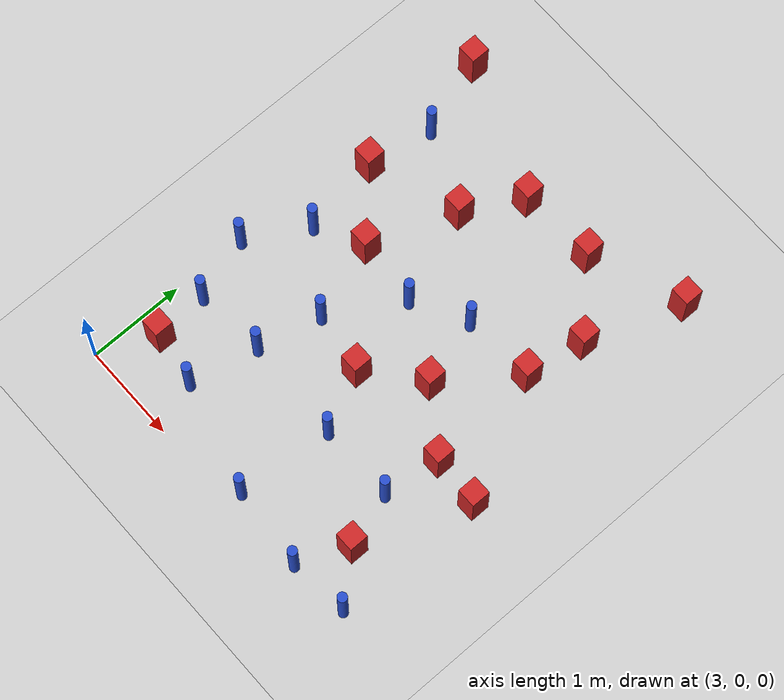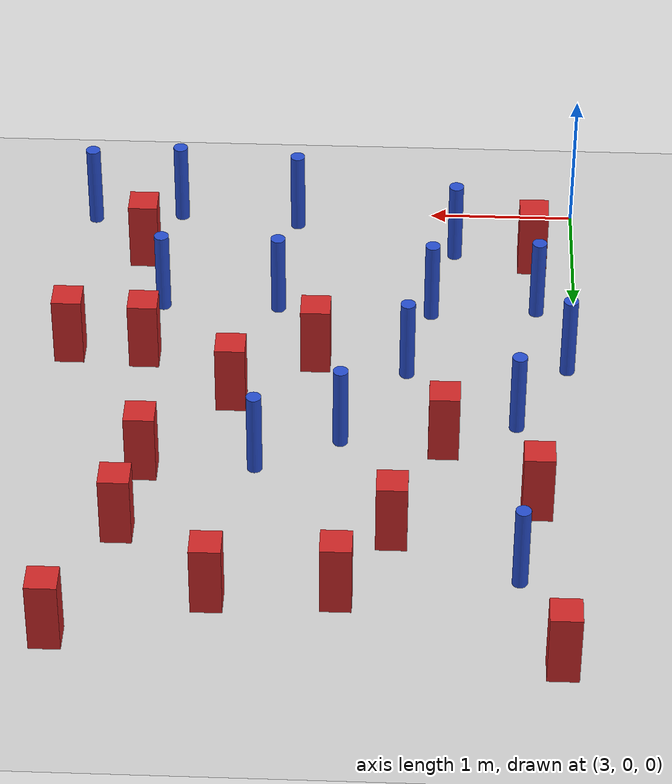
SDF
<sdf version="1.6">
 <world name="default">
  <model name="ground_plane">
   <static>1</static>
   <link name="link">
    <collision name="collision">
     <geometry><plane><normal>0 0 1</normal><size>100 100</size></plane></geometry>
     <surface><friction><ode><mu>100</mu><mu2>50</mu2></ode></friction></surface>
    </collision>
    <visual name="visual">
     <cast_shadows>0</cast_shadows>
     <geometry><plane><normal>0 0 1</normal><size>100 100</size></plane></geometry>
     <material>
      <ambient>1.0 1.0 1.0 1.0</ambient>
      <diffuse>0.8 0.8 0.8 1.0</diffuse>
      <specular>0.01 0.01 0.01 1.000000</specular>
     </material>
    </visual>
   </link>
  </model>
  <model name="square_post_obstacle15">
   <static>true</static>
   <pose>5.91913533131 1.71610015899 8.22691968438e-08 7.2212513382e-06 -7.54495500217e-07 2.29674213826e-05</pose>
   <link name="link">
    <pose>0 0 0.25 0 -0 0</pose>
    <inertial>
     <mass>100</mass>
     <inertia>
      <ixx>0.166667</ixx>
      <ixy>0</ixy>
      <ixz>0</ixz>
      <iyy>0.166667</iyy>
      <iyz>0</iyz>
      <izz>0.166667</izz>
     </inertia>
    </inertial>
    <collision name="collision"><geometry><box><size>.2 .2 .5</size></box></geometry></collision>
    <visual name="visual">
     <geometry><box><size>.2 .2 .5</size></box></geometry>
     <material>
      <script><name>Gazebo/Red</name><uri>file://media/materials/scripts/gazebo.material</uri></script>
     </material>
    </visual>
   </link>
  </model>
  <model name="square_post_obstacle16">
   <static>true</static>
   <pose>4.75993970819 1.72401905537 8.22691968438e-08 7.2212513382e-06 -7.54495500217e-07 2.29674213826e-05</pose>
   <link name="link">
    <pose>0 0 0.25 0 -0 0</pose>
    <inertial>
     <mass>100</mass>
     <inertia>
      <ixx>0.166667</ixx>
      <ixy>0</ixy>
      <ixz>0</ixz>
      <iyy>0.166667</iyy>
      <iyz>0</iyz>
      <izz>0.166667</izz>
     </inertia>
    </inertial>
    <collision name="collision"><geometry><box><size>.2 .2 .5</size></box></geometry></collision>
    <visual name="visual">
     <geometry><box><size>.2 .2 .5</size></box></geometry>
     <material>
      <script><name>Gazebo/Red</name><uri>file://media/materials/scripts/gazebo.material</uri></script>
     </material>
    </visual>
   </link>
  </model>
  <model name="pole_obstacle24">
   <static>true</static>
   <pose>5.11037407462 2.83061327207 2.88873142074e-08 -9.90536690245e-09 4.6021994898e-07 -1.20965994966e-07</pose>
   <link name="link">
    <pose>0 0 0.3 0 -0 0</pose>
    <inertial>
     <mass>1</mass>
     <inertia><ixx>0.145833</ixx><ixy>0</ixy><ixz>0</ixz><iyy>0.145833</iyy><iyz>0</iyz><izz>0.125</izz></inertia>
    </inertial>
    <collision name="collision">
     <geometry><cylinder><radius>0.05</radius><length>.6</length></cylinder></geometry>
    </collision>
    <visual name="visual">
     <geometry><cylinder><radius>0.05</radius><length>.6</length></cylinder></geometry>
     <material>
      <script><name>Gazebo/Blue</name><uri>file://media/materials/scripts/gazebo.material</uri></script>
     </material>
    </visual>
   </link>
  </model>
  <model name="square_post_obstacle28">
   <static>true</static>
   <pose>4.20673665937 3.49029811703 8.22691968438e-08 7.2212513382e-06 -7.54495500217e-07 2.29674213826e-05</pose>
   <link name="link">
    <pose>0 0 0.25 0 -0 0</pose>
    <inertial>
     <mass>100</mass>
     <inertia>
      <ixx>0.166667</ixx>
      <ixy>0</ixy>
      <ixz>0</ixz>
      <iyy>0.166667</iyy>
      <iyz>0</iyz>
      <izz>0.166667</izz>
     </inertia>
    </inertial>
    <collision name="collision"><geometry><box><size>.2 .2 .5</size></box></geometry></collision>
    <visual name="visual">
     <geometry><box><size>.2 .2 .5</size></box></geometry>
     <material>
      <script><name>Gazebo/Red</name><uri>file://media/materials/scripts/gazebo.material</uri></script>
     </material>
    </visual>
   </link>
  </model>
  <model name="pole_obstacle33">
   <static>true</static>
   <pose>6.40527286251 0.13451410764 2.88873142074e-08 -9.90536689234e-09 4.60219949004e-07 -1.20965994953e-07</pose>
   <link name="link">
    <pose>0 0 0.3 0 -0 0</pose>
    <inertial>
     <mass>1</mass>
     <inertia><ixx>0.145833</ixx><ixy>0</ixy><ixz>0</ixz><iyy>0.145833</iyy><iyz>0</iyz><izz>0.125</izz></inertia>
    </inertial>
    <collision name="collision">
     <geometry><cylinder><radius>0.05</radius><length>.6</length></cylinder></geometry>
    </collision>
    <visual name="visual">
     <geometry><cylinder><radius>0.05</radius><length>.6</length></cylinder></geometry>
     <material>
      <script><name>Gazebo/Blue</name><uri>file://media/materials/scripts/gazebo.material</uri></script>
     </material>
    </visual>
   </link>
  </model>
  <model name="pole_obstacle35">
   <static>true</static>
   <pose>3.39763952158 3.85298940122 2.88873142074e-08 -9.90536690232e-09 4.6021994898e-07 -1.20965994968e-07</pose>
   <link name="link">
    <pose>0 0 0.3 0 -0 0</pose>
    <inertial>
     <mass>1</mass>
     <inertia><ixx>0.145833</ixx><ixy>0</ixy><ixz>0</ixz><iyy>0.145833</iyy><iyz>0</iyz><izz>0.125</izz></inertia>
    </inertial>
    <collision name="collision">
     <geometry><cylinder><radius>0.05</radius><length>.6</length></cylinder></geometry>
    </collision>
    <visual name="visual">
     <geometry><cylinder><radius>0.05</radius><length>.6</length></cylinder></geometry>
     <material>
      <script><name>Gazebo/Blue</name><uri>file://media/materials/scripts/gazebo.material</uri></script>
     </material>
    </visual>
   </link>
  </model>
  <model name="square_post_obstacle38">
   <static>true</static>
   <pose>5.30407567016 2.15420816764 8.22691968438e-08 7.2212513382e-06 -7.54495500217e-07 2.29674213826e-05</pose>
   <link name="link">
    <pose>0 0 0.25 0 -0 0</pose>
    <inertial>
     <mass>100</mass>
     <inertia>
      <ixx>0.166667</ixx>
      <ixy>0</ixy>
      <ixz>0</ixz>
      <iyy>0.166667</iyy>
      <iyz>0</iyz>
      <izz>0.166667</izz>
     </inertia>
    </inertial>
    <collision name="collision"><geometry><box><size>.2 .2 .5</size></box></geometry></collision>
    <visual name="visual">
     <geometry><box><size>.2 .2 .5</size></box></geometry>
     <material>
      <script><name>Gazebo/Red</name><uri>file://media/materials/scripts/gazebo.material</uri></script>
     </material>
    </visual>
   </link>
  </model>
  <model name="square_post_obstacle41">
   <static>true</static>
   <pose>3.14698294766 4.61446405853 8.22691968438e-08 7.2212513382e-06 -7.54495500217e-07 2.29674213826e-05</pose>
   <link name="link">
    <pose>0 0 0.25 0 -0 0</pose>
    <inertial>
     <mass>100</mass>
     <inertia>
      <ixx>0.166667</ixx>
      <ixy>0</ixy>
      <ixz>0</ixz>
      <iyy>0.166667</iyy>
      <iyz>0</iyz>
      <izz>0.166667</izz>
     </inertia>
    </inertial>
    <collision name="collision"><geometry><box><size>.2 .2 .5</size></box></geometry></collision>
    <visual name="visual">
     <geometry><box><size>.2 .2 .5</size></box></geometry>
     <material>
      <script><name>Gazebo/Red</name><uri>file://media/materials/scripts/gazebo.material</uri></script>
     </material>
    </visual>
   </link>
  </model>
  <model name="square_post_obstacle42">
   <static>true</static>
   <pose>3.88788848472 2.59836692226 8.22691968438e-08 7.2212513382e-06 -7.54495500217e-07 2.29674213826e-05</pose>
   <link name="link">
    <pose>0 0 0.25 0 -0 0</pose>
    <inertial>
     <mass>100</mass>
     <inertia>
      <ixx>0.166667</ixx>
      <ixy>0</ixy>
      <ixz>0</ixz>
      <iyy>0.166667</iyy>
      <iyz>0</iyz>
      <izz>0.166667</izz>
     </inertia>
    </inertial>
    <collision name="collision"><geometry><box><size>.2 .2 .5</size></box></geometry></collision>
    <visual name="visual">
     <geometry><box><size>.2 .2 .5</size></box></geometry>
     <material>
      <script><name>Gazebo/Red</name><uri>file://media/materials/scripts/gazebo.material</uri></script>
     </material>
    </visual>
   </link>
  </model>
  <model name="pole_obstacle56">
   <static>true</static>
   <pose>5.8394028995 1.13227274472 2.88873142074e-08 -9.90536689445e-09 4.60219948999e-07 -1.20965994956e-07</pose>
   <link name="link">
    <pose>0 0 0.3 0 -0 0</pose>
    <inertial>
     <mass>1</mass>
     <inertia><ixx>0.145833</ixx><ixy>0</ixy><ixz>0</ixz><iyy>0.145833</iyy><iyz>0</iyz><izz>0.125</izz></inertia>
    </inertial>
    <collision name="collision">
     <geometry><cylinder><radius>0.05</radius><length>.6</length></cylinder></geometry>
    </collision>
    <visual name="visual">
     <geometry><cylinder><radius>0.05</radius><length>.6</length></cylinder></geometry>
     <material>
      <script><name>Gazebo/Blue</name><uri>file://media/materials/scripts/gazebo.material</uri></script>
     </material>
    </visual>
   </link>
  </model>
  <model name="square_post_obstacle53">
   <static>true</static>
   <pose>6.01194403105 0.586845021487 8.22691968438e-08 7.2212513382e-06 -7.54495500217e-07 2.29674213826e-05</pose>
   <link name="link">
    <pose>0 0 0.25 0 -0 0</pose>
    <inertial>
     <mass>100</mass>
     <inertia>
      <ixx>0.166667</ixx>
      <ixy>0</ixy>
      <ixz>0</ixz>
      <iyy>0.166667</iyy>
      <iyz>0</iyz>
      <izz>0.166667</izz>
     </inertia>
    </inertial>
    <collision name="collision"><geometry><box><size>.2 .2 .5</size></box></geometry></collision>
    <visual name="visual">
     <geometry><box><size>.2 .2 .5</size></box></geometry>
     <material>
      <script><name>Gazebo/Red</name><uri>file://media/materials/scripts/gazebo.material</uri></script>
     </material>
    </visual>
   </link>
  </model>
  <model name="square_post_obstacle58">
   <static>true</static>
   <pose>5.33060784728 4.10329700988 8.22691968438e-08 7.2212513382e-06 -7.54495500217e-07 2.29674213826e-05</pose>
   <link name="link">
    <pose>0 0 0.25 0 -0 0</pose>
    <inertial>
     <mass>100</mass>
     <inertia>
      <ixx>0.166667</ixx>
      <ixy>0</ixy>
      <ixz>0</ixz>
      <iyy>0.166667</iyy>
      <iyz>0</iyz>
      <izz>0.166667</izz>
     </inertia>
    </inertial>
    <collision name="collision"><geometry><box><size>.2 .2 .5</size></box></geometry></collision>
    <visual name="visual">
     <geometry><box><size>.2 .2 .5</size></box></geometry>
     <material>
      <script><name>Gazebo/Red</name><uri>file://media/materials/scripts/gazebo.material</uri></script>
     </material>
    </visual>
   </link>
  </model>
  <model name="square_post_obstacle65">
   <static>true</static>
   <pose>5.94418810732 3.48934024343 8.22691968438e-08 7.2212513382e-06 -7.54495500217e-07 2.29674213826e-05</pose>
   <link name="link">
    <pose>0 0 0.25 0 -0 0</pose>
    <inertial>
     <mass>100</mass>
     <inertia>
      <ixx>0.166667</ixx>
      <ixy>0</ixy>
      <ixz>0</ixz>
      <iyy>0.166667</iyy>
      <iyz>0</iyz>
      <izz>0.166667</izz>
     </inertia>
    </inertial>
    <collision name="collision"><geometry><box><size>.2 .2 .5</size></box></geometry></collision>
    <visual name="visual">
     <geometry><box><size>.2 .2 .5</size></box></geometry>
     <material>
      <script><name>Gazebo/Red</name><uri>file://media/materials/scripts/gazebo.material</uri></script>
     </material>
    </visual>
   </link>
  </model>
  <model name="pole_obstacle101">
   <static>true</static>
   <pose>4.14185569916 1.82189329206 2.88873142074e-08 -9.90536689445e-09 4.60219948999e-07 -1.20965994956e-07</pose>
   <link name="link">
    <pose>0 0 0.3 0 -0 0</pose>
    <inertial>
     <mass>1</mass>
     <inertia><ixx>0.145833</ixx><ixy>0</ixy><ixz>0</ixz><iyy>0.145833</iyy><iyz>0</iyz><izz>0.125</izz></inertia>
    </inertial>
    <collision name="collision">
     <geometry><cylinder><radius>0.05</radius><length>.6</length></cylinder></geometry>
    </collision>
    <visual name="visual">
     <geometry><cylinder><radius>0.05</radius><length>.6</length></cylinder></geometry>
     <material>
      <script><name>Gazebo/Blue</name><uri>file://media/materials/scripts/gazebo.material</uri></script>
     </material>
    </visual>
   </link>
  </model>
  <model name="pole_obstacle113">
   <static>true</static>
   <pose>3.26121144728 1.10969766319 2.88873142074e-08 -9.90536689395e-09 4.60219949e-07 -1.20965994953e-07</pose>
   <link name="link">
    <pose>0 0 0.3 0 -0 0</pose>
    <inertial>
     <mass>1</mass>
     <inertia><ixx>0.145833</ixx><ixy>0</ixy><ixz>0</ixz><iyy>0.145833</iyy><iyz>0</iyz><izz>0.125</izz></inertia>
    </inertial>
    <collision name="collision">
     <geometry><cylinder><radius>0.05</radius><length>.6</length></cylinder></geometry>
    </collision>
    <visual name="visual">
     <geometry><cylinder><radius>0.05</radius><length>.6</length></cylinder></geometry>
     <material>
      <script><name>Gazebo/Blue</name><uri>file://media/materials/scripts/gazebo.material</uri></script>
     </material>
    </visual>
   </link>
  </model>
  <model name="square_post_obstacle114">
   <static>true</static>
   <pose>5.83946786717 2.88007803381 8.22691968438e-08 7.2212513382e-06 -7.54495500217e-07 2.29674213826e-05</pose>
   <link name="link">
    <pose>0 0 0.25 0 -0 0</pose>
    <inertial>
     <mass>100</mass>
     <inertia>
      <ixx>0.166667</ixx>
      <ixy>0</ixy>
      <ixz>0</ixz>
      <iyy>0.166667</iyy>
      <iyz>0</iyz>
      <izz>0.166667</izz>
     </inertia>
    </inertial>
    <collision name="collision"><geometry><box><size>.2 .2 .5</size></box></geometry></collision>
    <visual name="visual">
     <geometry><box><size>.2 .2 .5</size></box></geometry>
     <material>
      <script><name>Gazebo/Red</name><uri>file://media/materials/scripts/gazebo.material</uri></script>
     </material>
    </visual>
   </link>
  </model>
  <model name="pole_obstacle135">
   <static>true</static>
   <pose>4.56372348728 2.54478385876 2.88873142074e-08 -9.90536690245e-09 4.6021994898e-07 -1.20965994966e-07</pose>
   <link name="link">
    <pose>0 0 0.3 0 -0 0</pose>
    <inertial>
     <mass>1</mass>
     <inertia><ixx>0.145833</ixx><ixy>0</ixy><ixz>0</ixz><iyy>0.145833</iyy><iyz>0</iyz><izz>0.125</izz></inertia>
    </inertial>
    <collision name="collision">
     <geometry><cylinder><radius>0.05</radius><length>.6</length></cylinder></geometry>
    </collision>
    <visual name="visual">
     <geometry><cylinder><radius>0.05</radius><length>.6</length></cylinder></geometry>
     <material>
      <script><name>Gazebo/Blue</name><uri>file://media/materials/scripts/gazebo.material</uri></script>
     </material>
    </visual>
   </link>
  </model>
  <model name="pole_obstacle136">
   <static>true</static>
   <pose>5.79006558571 0.0757111506193 2.88873142074e-08 -9.90536689727e-09 4.60219948992e-07 -1.20965994958e-07</pose>
   <link name="link">
    <pose>0 0 0.3 0 -0 0</pose>
    <inertial>
     <mass>1</mass>
     <inertia><ixx>0.145833</ixx><ixy>0</ixy><ixz>0</ixz><iyy>0.145833</iyy><iyz>0</iyz><izz>0.125</izz></inertia>
    </inertial>
    <collision name="collision">
     <geometry><cylinder><radius>0.05</radius><length>.6</length></cylinder></geometry>
    </collision>
    <visual name="visual">
     <geometry><cylinder><radius>0.05</radius><length>.6</length></cylinder></geometry>
     <material>
      <script><name>Gazebo/Blue</name><uri>file://media/materials/scripts/gazebo.material</uri></script>
     </material>
    </visual>
   </link>
  </model>
  <model name="pole_obstacle142">
   <static>true</static>
   <pose>3.40600078391 2.3549040393 2.88873142074e-08 -9.90536690232e-09 4.6021994898e-07 -1.20965994968e-07</pose>
   <link name="link">
    <pose>0 0 0.3 0 -0 0</pose>
    <inertial>
     <mass>1</mass>
     <inertia><ixx>0.145833</ixx><ixy>0</ixy><ixz>0</ixz><iyy>0.145833</iyy><iyz>0</iyz><izz>0.125</izz></inertia>
    </inertial>
    <collision name="collision">
     <geometry><cylinder><radius>0.05</radius><length>.6</length></cylinder></geometry>
    </collision>
    <visual name="visual">
     <geometry><cylinder><radius>0.05</radius><length>.6</length></cylinder></geometry>
     <material>
      <script><name>Gazebo/Blue</name><uri>file://media/materials/scripts/gazebo.material</uri></script>
     </material>
    </visual>
   </link>
  </model>
  <model name="pole_obstacle147">
   <static>true</static>
   <pose>3.06055036785 1.74684611782 2.88873142074e-08 -9.90536689395e-09 4.60219949e-07 -1.20965994953e-07</pose>
   <link name="link">
    <pose>0 0 0.3 0 -0 0</pose>
    <inertial>
     <mass>1</mass>
     <inertia><ixx>0.145833</ixx><ixy>0</ixy><ixz>0</ixz><iyy>0.145833</iyy><iyz>0</iyz><izz>0.125</izz></inertia>
    </inertial>
    <collision name="collision">
     <geometry><cylinder><radius>0.05</radius><length>.6</length></cylinder></geometry>
    </collision>
    <visual name="visual">
     <geometry><cylinder><radius>0.05</radius><length>.6</length></cylinder></geometry>
     <material>
      <script><name>Gazebo/Blue</name><uri>file://media/materials/scripts/gazebo.material</uri></script>
     </material>
    </visual>
   </link>
  </model>
  <model name="pole_obstacle149">
   <static>true</static>
   <pose>5.04340811305 1.13180181886 2.88873142074e-08 -9.90536689445e-09 4.60219948999e-07 -1.20965994956e-07</pose>
   <link name="link">
    <pose>0 0 0.3 0 -0 0</pose>
    <inertial>
     <mass>1</mass>
     <inertia><ixx>0.145833</ixx><ixy>0</ixy><ixz>0</ixz><iyy>0.145833</iyy><iyz>0</iyz><izz>0.125</izz></inertia>
    </inertial>
    <collision name="collision">
     <geometry><cylinder><radius>0.05</radius><length>.6</length></cylinder></geometry>
    </collision>
    <visual name="visual">
     <geometry><cylinder><radius>0.05</radius><length>.6</length></cylinder></geometry>
     <material>
      <script><name>Gazebo/Blue</name><uri>file://media/materials/scripts/gazebo.material</uri></script>
     </material>
    </visual>
   </link>
  </model>
  <model name="square_post_obstacle156">
   <static>true</static>
   <pose>3.28356651461 3.17143553689 8.22691968438e-08 7.2212513382e-06 -7.54495500217e-07 2.29674213826e-05</pose>
   <link name="link">
    <pose>0 0 0.25 0 -0 0</pose>
    <inertial>
     <mass>100</mass>
     <inertia>
      <ixx>0.166667</ixx>
      <ixy>0</ixy>
      <ixz>0</ixz>
      <iyy>0.166667</iyy>
      <iyz>0</iyz>
      <izz>0.166667</izz>
     </inertia>
    </inertial>
    <collision name="collision"><geometry><box><size>.2 .2 .5</size></box></geometry></collision>
    <visual name="visual">
     <geometry><box><size>.2 .2 .5</size></box></geometry>
     <material>
      <script><name>Gazebo/Red</name><uri>file://media/materials/scripts/gazebo.material</uri></script>
     </material>
    </visual>
   </link>
  </model>
  <model name="square_post_obstacle164">
   <static>true</static>
   <pose>6.28947822583 4.46277734686 8.22691968438e-08 7.2212513382e-06 -7.54495500217e-07 2.29674213826e-05</pose>
   <link name="link">
    <pose>0 0 0.25 0 -0 0</pose>
    <inertial>
     <mass>100</mass>
     <inertia>
      <ixx>0.166667</ixx>
      <ixy>0</ixy>
      <ixz>0</ixz>
      <iyy>0.166667</iyy>
      <iyz>0</iyz>
      <izz>0.166667</izz>
     </inertia>
    </inertial>
    <collision name="collision"><geometry><box><size>.2 .2 .5</size></box></geometry></collision>
    <visual name="visual">
     <geometry><box><size>.2 .2 .5</size></box></geometry>
     <material>
      <script><name>Gazebo/Red</name><uri>file://media/materials/scripts/gazebo.material</uri></script>
     </material>
    </visual>
   </link>
  </model>
  <model name="pole_obstacle167">
   <static>true</static>
   <pose>3.83090991334 0.471799464773 2.88873142074e-08 -9.90536689151e-09 4.60219949006e-07 -1.20965994951e-07</pose>
   <link name="link">
    <pose>0 0 0.3 0 -0 0</pose>
    <inertial>
     <mass>1</mass>
     <inertia><ixx>0.145833</ixx><ixy>0</ixy><ixz>0</ixz><iyy>0.145833</iyy><iyz>0</iyz><izz>0.125</izz></inertia>
    </inertial>
    <collision name="collision">
     <geometry><cylinder><radius>0.05</radius><length>.6</length></cylinder></geometry>
    </collision>
    <visual name="visual">
     <geometry><cylinder><radius>0.05</radius><length>.6</length></cylinder></geometry>
     <material>
      <script><name>Gazebo/Blue</name><uri>file://media/materials/scripts/gazebo.material</uri></script>
     </material>
    </visual>
   </link>
  </model>
  <model name="square_post_obstacle169">
   <static>true</static>
   <pose>3.28781978675 0.568273804316 8.22691968438e-08 7.2212513382e-06 -7.54495500217e-07 2.29674213826e-05</pose>
   <link name="link">
    <pose>0 0 0.25 0 -0 0</pose>
    <inertial>
     <mass>100</mass>
     <inertia>
      <ixx>0.166667</ixx>
      <ixy>0</ixy>
      <ixz>0</ixz>
      <iyy>0.166667</iyy>
      <iyz>0</iyz>
      <izz>0.166667</izz>
     </inertia>
    </inertial>
    <collision name="collision"><geometry><box><size>.2 .2 .5</size></box></geometry></collision>
    <visual name="visual">
     <geometry><box><size>.2 .2 .5</size></box></geometry>
     <material>
      <script><name>Gazebo/Red</name><uri>file://media/materials/scripts/gazebo.material</uri></script>
     </material>
    </visual>
   </link>
  </model>
  <model name="square_post_obstacle174">
   <static>true</static>
   <pose>4.53590703878 4.06580607289 8.22691968438e-08 7.22125133819e-06 -7.54495500217e-07 2.29674213826e-05</pose>
   <link name="link">
    <pose>0 0 0.25 0 -0 0</pose>
    <inertial>
     <mass>100</mass>
     <inertia>
      <ixx>0.166667</ixx>
      <ixy>0</ixy>
      <ixz>0</ixz>
      <iyy>0.166667</iyy>
      <iyz>0</iyz>
      <izz>0.166667</izz>
     </inertia>
    </inertial>
    <collision name="collision"><geometry><box><size>.2 .2 .5</size></box></geometry></collision>
    <visual name="visual">
     <geometry><box><size>.2 .2 .5</size></box></geometry>
     <material>
      <script><name>Gazebo/Red</name><uri>file://media/materials/scripts/gazebo.material</uri></script>
     </material>
    </visual>
   </link>
  </model>
  <model name="square_post_obstacle175">
   <static>true</static>
   <pose>6.43059655058 1.68471212094 8.22691968438e-08 7.2212513382e-06 -7.54495500217e-07 2.29674213826e-05</pose>
   <link name="link">
    <pose>0 0 0.25 0 -0 0</pose>
    <inertial>
     <mass>100</mass>
     <inertia>
      <ixx>0.166667</ixx>
      <ixy>0</ixy>
      <ixz>0</ixz>
      <iyy>0.166667</iyy>
      <iyz>0</iyz>
      <izz>0.166667</izz>
     </inertia>
    </inertial>
    <collision name="collision"><geometry><box><size>.2 .2 .5</size></box></geometry></collision>
    <visual name="visual">
     <geometry><box><size>.2 .2 .5</size></box></geometry>
     <material>
      <script><name>Gazebo/Red</name><uri>file://media/materials/scripts/gazebo.material</uri></script>
     </material>
    </visual>
   </link>
  </model>
  <model name="pole_obstacle185">
   <static>true</static>
   <pose>3.98613667231 1.1697011549 2.88873142074e-08 -9.90536689315e-09 4.60219949002e-07 -1.20965994954e-07</pose>
   <link name="link">
    <pose>0 0 0.3 0 -0 0</pose>
    <inertial>
     <mass>1</mass>
     <inertia><ixx>0.145833</ixx><ixy>0</ixy><ixz>0</ixz><iyy>0.145833</iyy><iyz>0</iyz><izz>0.125</izz></inertia>
    </inertial>
    <collision name="collision">
     <geometry><cylinder><radius>0.05</radius><length>.6</length></cylinder></geometry>
    </collision>
    <visual name="visual">
     <geometry><cylinder><radius>0.05</radius><length>.6</length></cylinder></geometry>
     <material>
      <script><name>Gazebo/Blue</name><uri>file://media/materials/scripts/gazebo.material</uri></script>
     </material>
    </visual>
   </link>
  </model>
  <model name="pole_obstacle204">
   <static>true</static>
   <pose>4.95444954009 0.153506207927 2.88873142074e-08 -9.90536689234e-09 4.60219949004e-07 -1.20965994953e-07</pose>
   <link name="link">
    <pose>0 0 0.3 0 -0 0</pose>
    <inertial>
     <mass>1</mass>
     <inertia><ixx>0.145833</ixx><ixy>0</ixy><ixz>0</ixz><iyy>0.145833</iyy><iyz>0</iyz><izz>0.125</izz></inertia>
    </inertial>
    <collision name="collision">
     <geometry><cylinder><radius>0.05</radius><length>.6</length></cylinder></geometry>
    </collision>
    <visual name="visual">
     <geometry><cylinder><radius>0.05</radius><length>.6</length></cylinder></geometry>
     <material>
      <script><name>Gazebo/Blue</name><uri>file://media/materials/scripts/gazebo.material</uri></script>
     </material>
    </visual>
   </link>
  </model>
 </world>
</sdf>
